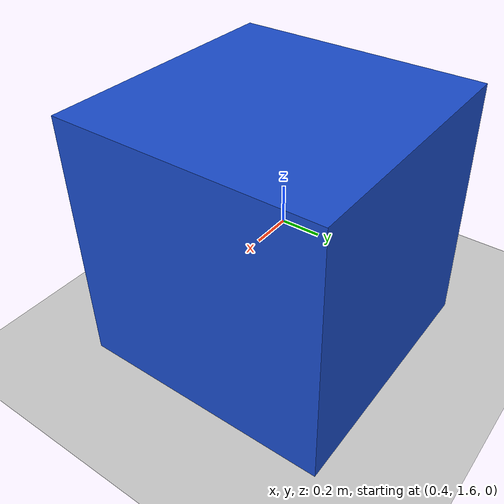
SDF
<?xml version="1.0"?>
<sdf version="1.6">
  <world name="default">
    <physics name="1ms" type="ignored">
      <max_step_size>0.001</max_step_size>
      <real_time_factor>1.0</real_time_factor>
    </physics>
    <plugin
      filename="gz-sim-physics-system"
      name="gz::sim::systems::Physics">
    </plugin>
    <plugin
      filename="gz-sim-user-commands-system"
      name="gz::sim::systems::UserCommands">
    </plugin>
    <plugin
      filename="gz-sim-scene-broadcaster-system"
      name="gz::sim::systems::SceneBroadcaster">
    </plugin>
    <plugin
      filename="gz-sim-contact-system"
      name="gz::sim::systems::Contact">
    </plugin>
    <plugin
      filename="gz-sim-imu-system"
      name="gz::sim::systems::Imu">
    </plugin>

    <light type="directional" name="sun">
      <cast_shadows>true</cast_shadows>
      <pose>0 0 10 0 0 0</pose>
      <diffuse>1 1 1 1</diffuse>
      <specular>0.5 0.5 0.5 1</specular>
      <attenuation>
        <range>1000</range>
        <constant>0.9</constant>
        <linear>0.01</linear>
        <quadratic>0.001</quadratic>
      </attenuation>
      <direction>-0.5 0.1 -0.9</direction>
    </light>

    <model name="ground_plane">
      <static>true</static>
      <link name="link">
        <collision name="collision">
          <geometry>
            <plane>
              <normal>0 0 1</normal>
              <size>100 100</size>
            </plane>
          </geometry>
        </collision>
        <visual name="visual">
          <geometry>
            <plane>
              <normal>0 0 1</normal>
              <size>100 100</size>
            </plane>
          </geometry>
          <material>
            <ambient>0.8 0.8 0.8 1</ambient>
            <diffuse>0.8 0.8 0.8 1</diffuse>
            <specular>0.8 0.8 0.8 1</specular>
          </material>
        </visual>
      </link>
    </model>

    <model name="my_box">
      <pose>1 2 0.5 0 0 0</pose> <!-- x y z roll pitch yaw -->
      <static>false</static>

      <link name="box_link">
        <collision name="box_collision">
          <geometry>
            <box>
              <size>1 1 1</size> <!-- x y z dimensions -->
            </box>
          </geometry>
        </collision>

        <visual name="box_visual">
          <geometry>
            <box>
              <size>1 1 1</size>
            </box>
          </geometry>
          <material>
            <ambient>0.1 0.3 0.8 1</ambient>
            <diffuse>0.1 0.3 0.8 1</diffuse>
          </material>
        </visual>

        <sensor name="imu" type="imu">
          <always_on>1</always_on>
          <update_rate>50</update_rate>
          <visualize>true</visualize>
          <topic>imu</topic>
          <enable_metrics>true</enable_metrics>
        </sensor>
      </link>

    </model>
  </world>
</sdf>
